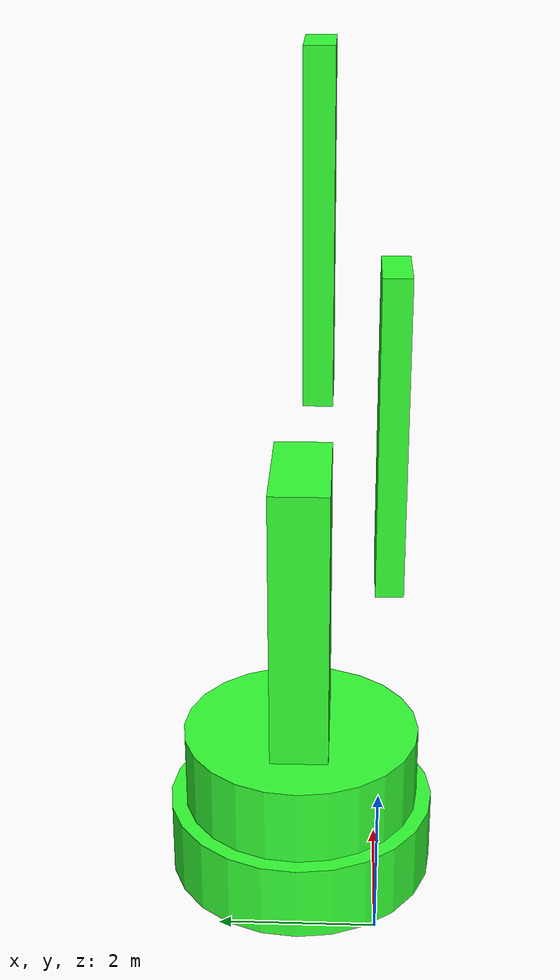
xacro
<?xml version="1.0"?>
<robot xmlns:xacro="http://www.ros.org/wiki/xacro" name="robot">

    <xacro:include filename="robotic_arm_gazebo.xacro"/>

    <!-- links and joints -->

    <!-- world -->
    <!-- empty because it is anchorpoint for world -->
    <link name="world"></link>

    <joint name="bottom_base_joint" type="fixed">
        <origin xyz="1.5 1.0 0" rpy="0 0 0"/>
        <parent link="world"/>
        <child link="bottom_base_link"/>
    </joint>
    <link name="bottom_base_link">
        <visual>
            <origin xyz="0 0 0.505" rpy="0 0 0"/>
            <geometry>
                <cylinder length="1.01" radius="1.75" />
            </geometry>
            <material name="green">
                <color rgba="0.2 1 0.2 1"/>
            </material>
        </visual>
        <collision>
            <origin xyz="0 0 1.01" rpy="0 0 0"/>
            <geometry>
                <cylinder length="2.02" radius="1.75" />
            </geometry>
        </collision>
        <inertial>
            <origin xyz="0 0 0.05" rpy="0 0 0"/>
            <!-- I have not changed the mass yet-->
            <mass value="12" />
            <!-- I have not changed the matrix yet-->
            <inertia ixx="2.26" ixy="0.0" ixz="0.0" iyy="6.26" iyz="0.0" izz="8.6" />
        </inertial>

    <!-- top base -->
    </link>
        <joint name="base_joint" type="revolute">
        <origin xyz="0 0 1.01" rpy="0 0 0"/>
        <parent link="bottom_base_link"/>
        <child link="top_base_link"/>
        <axis xyz="0 0 1"/>
        <limit lower="0" upper="3.14" velocity="100" effort="100"/>
    </joint>
    <link name="top_base_link">
        <visual>
            <origin xyz="0 0 0.505" rpy="0 0 0"/>
            <geometry>
                <cylinder length="1.01" radius="1.55" />
            </geometry>
            <material name="green">
                <color rgba="0.2 1 0.2 1"/>
            </material>
        </visual>
        <collision>
            <origin xyz="0 0 0.505" rpy="0 0 0"/>
            <geometry>
                <cylinder length="2.02" radius="1.55" />
            </geometry>
        </collision>
        <inertial>
            <origin xyz="0 0 0.05" rpy="0 0 0"/>
            <!-- I have not changed the mass yet-->
            <mass value="12" />
            <!-- I have not changed the matrix yet-->
            <inertia ixx="2.26" ixy="0.0" ixz="0.0" iyy="6.26" iyz="0.0" izz="8.6" />
        </inertial>
    </link>
    <!-- arm segment 1 -->
    <joint name="arm_segment_1" type="fixed">
        <origin xyz="0 0 1.01" rpy="0 0 0"/>
        <parent link="top_base_link" />
        <child link="arm_segment_1_link" />
    </joint>
    <link name="arm_segment_1_link">
        <visual>
            <origin xyz="0 0 1.7" rpy="0 0 0"/>
            <geometry>
                <box size="1.75 0.75 4" />
            </geometry>
            <material name="green">
                <color rgba="0.2 1 0.2 1"/>
            </material>
        </visual>
        <collision>
            <origin xyz="0 0 1.7" rpy="0 0 0"/>
            <geometry>
                <box size="1.75 0.75 4" />
            </geometry>
        </collision>
        <inertial>
            <origin xyz="0 0 0" rpy="0 0 0"/>
            <!-- I have not changed the mass yet-->
            <mass value="12" />
            <!-- I have not changed the matrix yet-->
            <inertia ixx="2.26" ixy="0.0" ixz="0.0" iyy="6.26" iyz="0.0" izz="8.6" />
        </inertial>
    </link>
    <!-- arm segment 2 -->
    <joint name="arm_segment_2" type="revolute">
        <origin xyz="0 -0.375 3.21" rpy="0 0 0"/>
        <parent link="arm_segment_1_link" />
        <child link="arm_segment_2_link" />
        <axis xyz="0 1 0"/>
        <limit lower="0" upper="3.14" velocity="100" effort="100"/>
    </joint>
    <link name="arm_segment_2_link">
        <visual>
            <!-- .55 is gap of between links + .175 is half of the width of the arm segment 2-->
            <origin xyz="0 -0.725 1" rpy="0 0 0"/>
            <geometry>
                <box size="1 0.35 4" />
            </geometry>
            <material name="green">
                <color rgba="0.2 1 0.2 1"/>
            </material>
        </visual>
        <collision>
            <origin xyz="0 -0.725 1" rpy="0 0 0"/>
            <geometry>
                <box size="1 0.35 4" />
            </geometry>
        </collision>
        <inertial>
            <origin xyz="0 -0.725 1" rpy="0 0 0"/>
            <!-- I have not changed the mass yet-->
            <mass value="12" />
            <!-- I have not changed the matrix yet-->
            <inertia ixx="2.26" ixy="0.0" ixz="0.0" iyy="6.26" iyz="0.0" izz="8.6" />
        </inertial>
    </link>
    <!-- arm segment 3 -->
    <joint name="arm_segment_3" type="revolute">
        <origin xyz="0 -0.55 2.48" rpy="0 0 0"/>
        <parent link="arm_segment_2_link" />
        <child link="arm_segment_3_link" />
        <axis xyz="0 1 0"/>
        <limit lower="0" upper="3.14" velocity="100" effort="100"/>
    </joint>
    <link name="arm_segment_3_link">
        <visual>
            <origin xyz="0 0.715 1" rpy="0 0 0"/>
            <geometry>
                <box size="1 0.35 4" />
            </geometry>
            <material name="green">
                <color rgba="0.2 1 0.2 1"/>
            </material>
        </visual>
        <collision>
            <origin xyz="0 0.715 1" rpy="0 0 0"/>
            <geometry>
                <box size="1 0.35 4" />
            </geometry>
        </collision>
        <inertial>
            <origin xyz="0 0.715 1" rpy="0 0 0"/>
            <!-- I have not changed the mass yet-->
            <mass value="12" />
            <!-- I have not changed the matrix yet-->
            <inertia ixx="2.26" ixy="0.0" ixz="0.0" iyy="6.26" iyz="0.0" izz="8.6" />
        </inertial>
    </link>
    <!-- end of arm -->
    <joint name="end_of_arm" type="fixed">
        <origin xyz="0 0.715 3" rpy="0 0 0"/>
        <parent link="arm_segment_3_link" />
        <child link="end_of_arm_tool_link" />
    </joint>
    <link name="end_of_arm_tool_link">
        <visual>
            <origin xyz="0 0 0" rpy="0 0 0"/>
            <geometry>
                <box size="0 0 0" />
            </geometry>
            <material name="green">
                <color rgba="0.2 1 0.2 1"/>
            </material>
        </visual>
        <collision>
            <origin xyz="0 0 0" rpy="0 0 0"/>
            <geometry>
                <box size="0 0 0" />
            </geometry>
        </collision>
        <inertial>
            <origin xyz="0 0 0" rpy="0 0 0"/>
            <!-- I have not changed the mass yet-->
            <mass value="12" />
            <!-- I have not changed the matrix yet-->
            <inertia ixx="2.26" ixy="0.0" ixz="0.0" iyy="6.26" iyz="0.0" izz="8.6" />
        </inertial>
    </link>
</robot>
